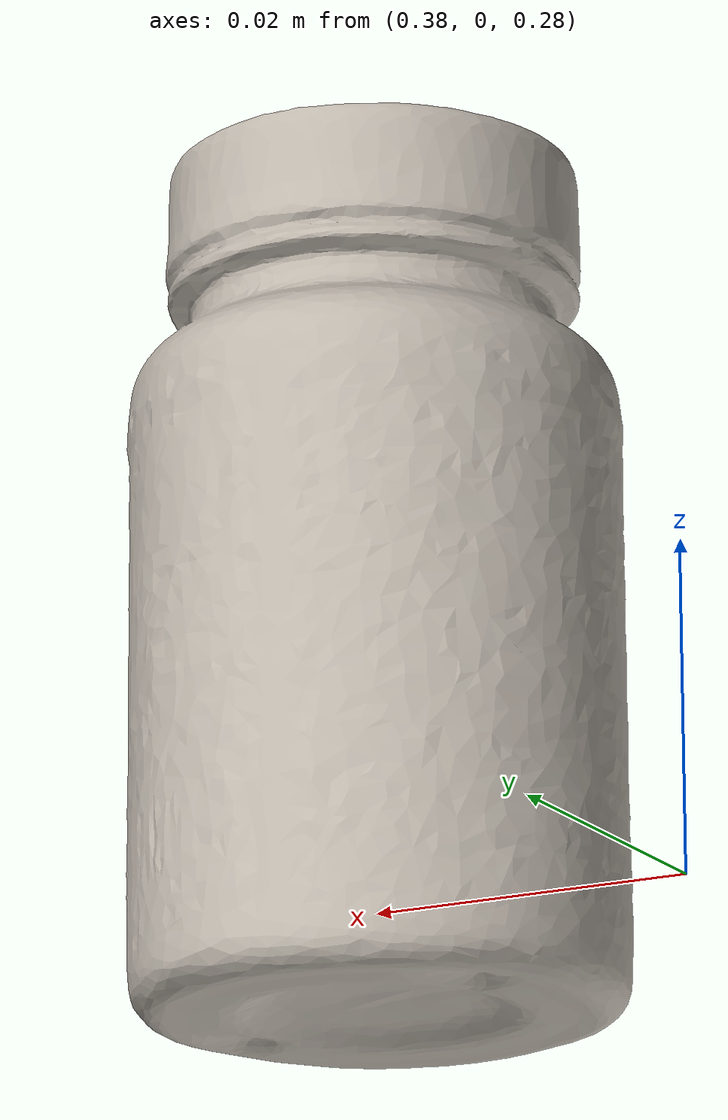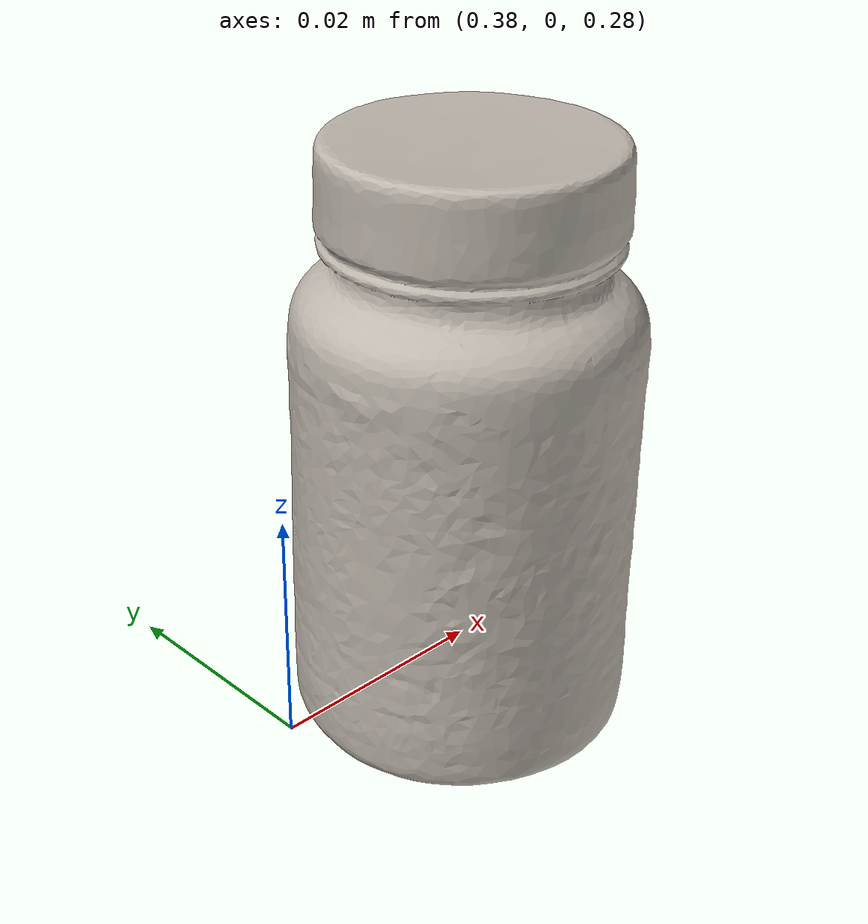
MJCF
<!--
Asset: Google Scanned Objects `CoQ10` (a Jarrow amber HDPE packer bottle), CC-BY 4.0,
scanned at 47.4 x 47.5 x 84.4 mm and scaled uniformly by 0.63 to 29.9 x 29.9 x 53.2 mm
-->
<?xml version="1.0"?>
<mujoco model="cylinder">
  <compiler meshdir="assets" texturedir="assets"/>
  <asset>
    <texture name="cylinder_tex" type="2d" file="cylinder_tex.png"/>
    <material name="cylinder_mat" texture="cylinder_tex" specular="0.15" shininess="0.15"/>
    <mesh name="cylinder_vis" file="cylinder_vis.obj"/>
    <mesh name="cylinder_col" file="cylinder_col_00.obj"/>
  </asset>
  <worldbody>
    <body name="cylinder" pos="0.4 0 0.3">
      <freejoint name="cylinder_joint"/>
      <!-- Mass 25 g: a filled 12 cc amber HDPE packer bottle. Inertia from the hull. -->
      <inertial pos="0.00004 -0.00002 -0.00092" quat="0.119179 -0.692608 0.118758 0.701418"
                mass="0.02500" diaginertia="2.639e-06 6.782e-06 6.802e-06"/>
      <geom name="cylinder_visual" type="mesh" mesh="cylinder_vis" material="cylinder_mat"
            contype="0" conaffinity="0" group="2" mass="0"/>
      <geom name="cylinder_geom" type="mesh" mesh="cylinder_col" group="3"
            rgba="0.5 0.5 0.5 0.3" condim="3" friction="1 0.03 0.003"
            contype="1" conaffinity="1" solref="0.01 1" mass="0"/>
      <!-- Object site for observations (manipulation point) -->
      <site name="object_site" pos="0 0 0" size="0.01" rgba="1 0 0 1"/>
    </body>
  </worldbody>
</mujoco>
